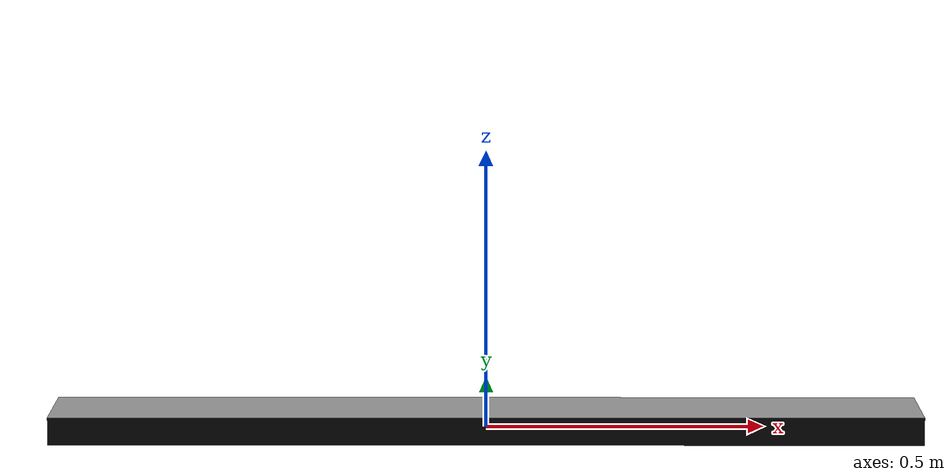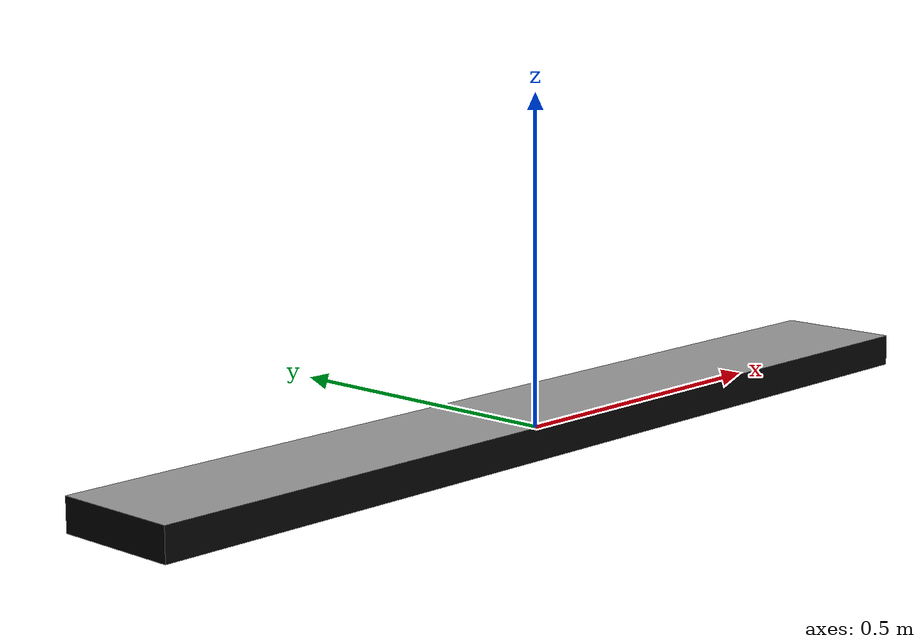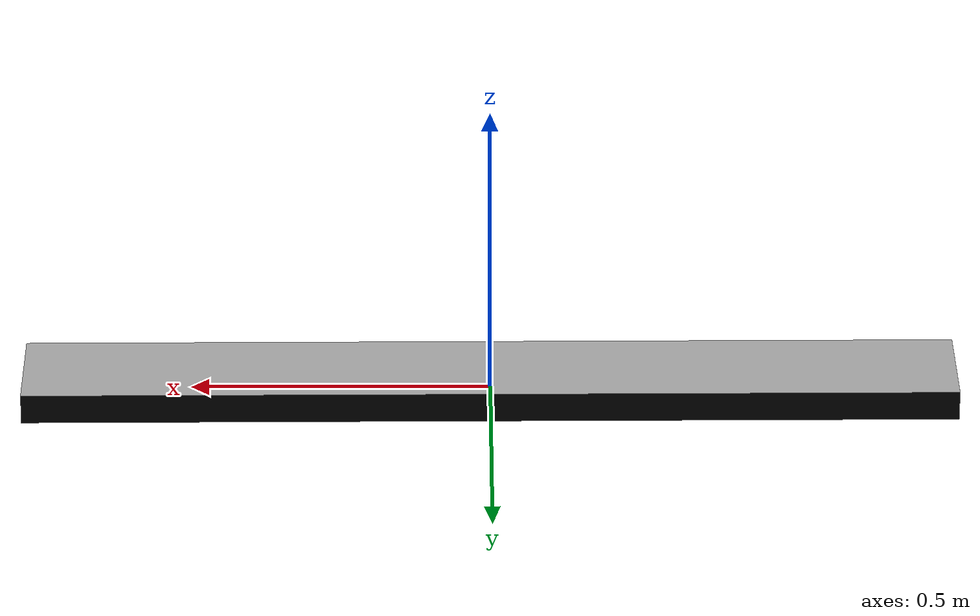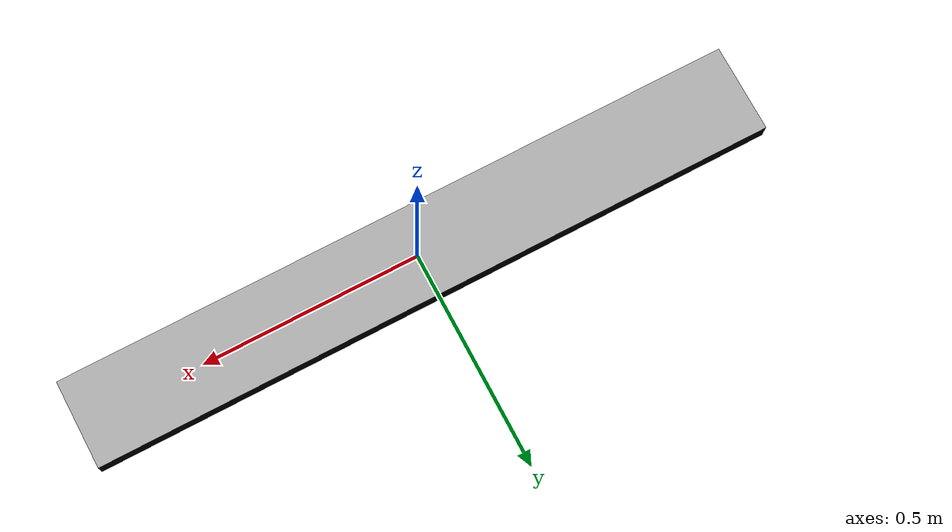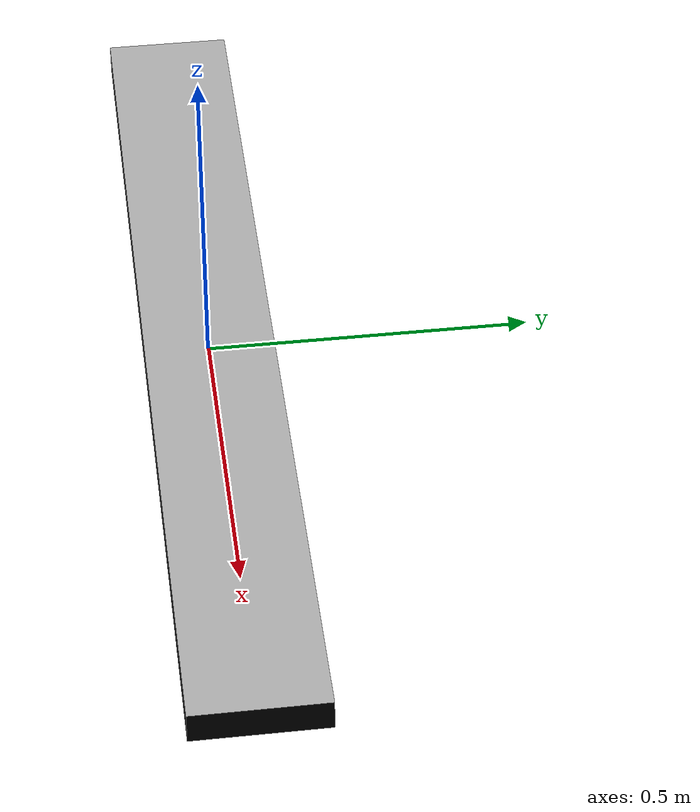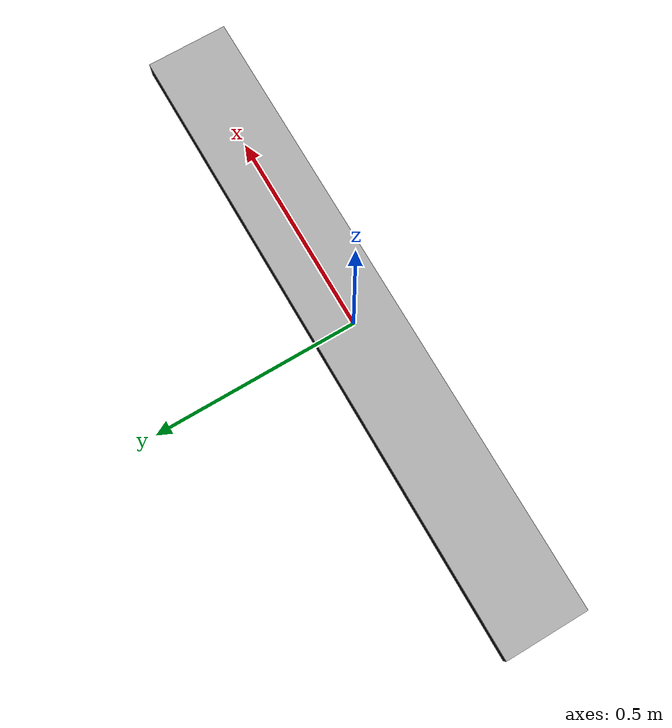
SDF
<?xml version="1.0" ?>
<sdf version='1.5'>
<model name='line'>
<static>true</static>
<link name="link">
   <pose frame=''>0 0 0.01 0 0 0</pose>
  <visual name='lineV'>
    <cast_shadows>false</cast_shadows>
    <geometry>
      <mesh>
        <scale>1.3 1.0 1.0</scale>
        <uri>model://line/model.dae</uri>
      </mesh>
    </geometry>
    <material>
      <script>
        <name>start</name>
        <uri>model://line/model.dae</uri>
      </script>
    </material>
  </visual>
</link>
</model>
</sdf>
